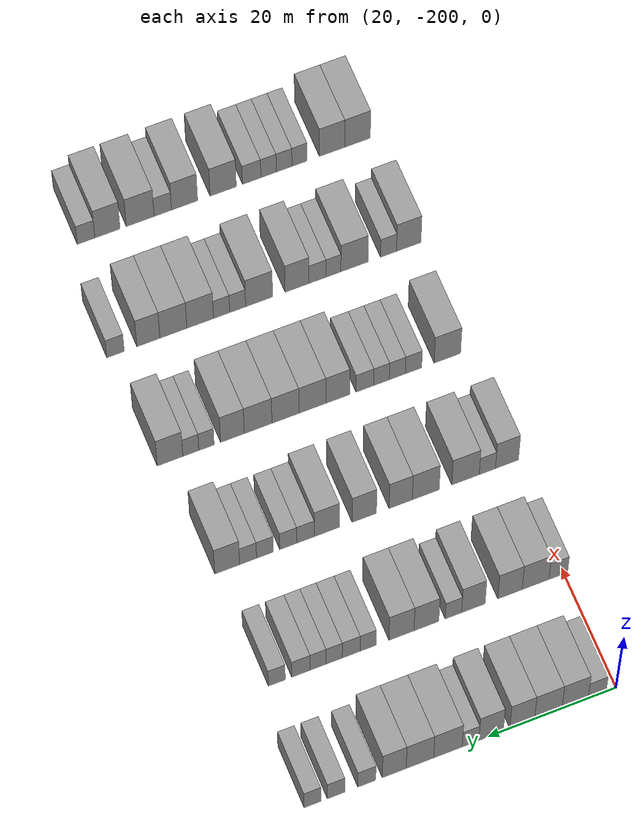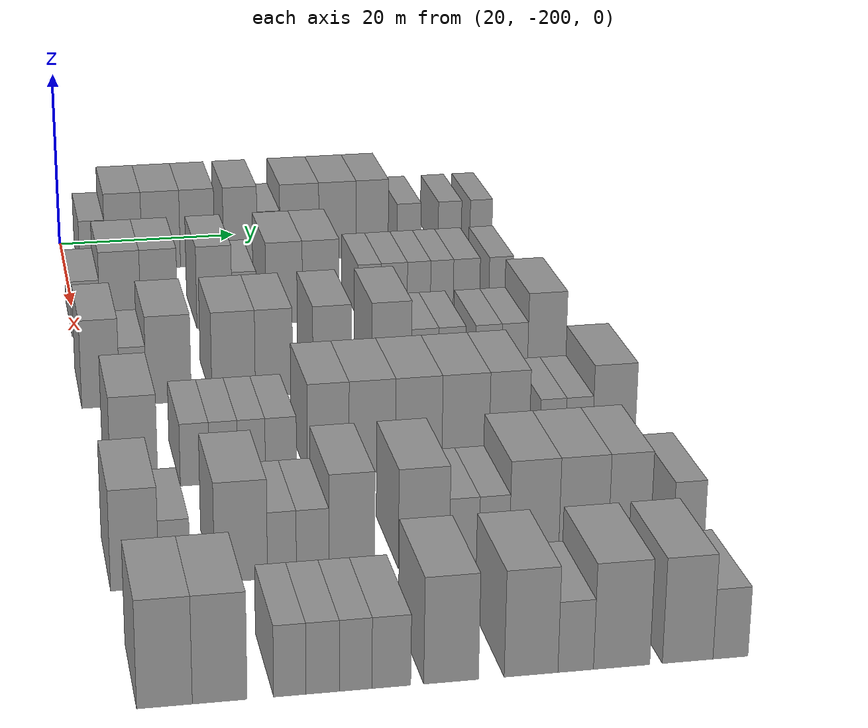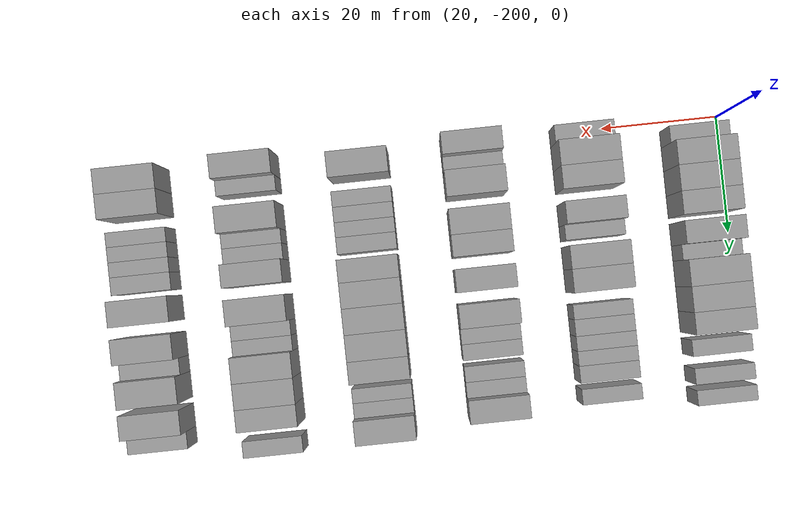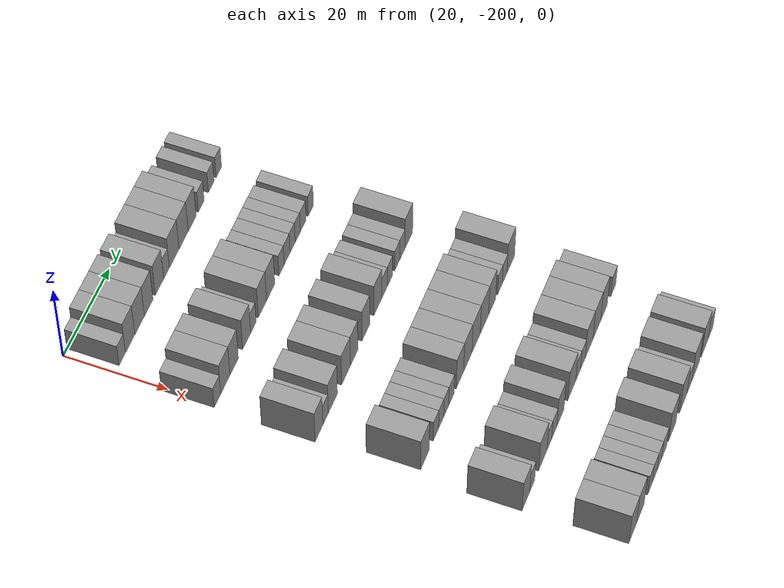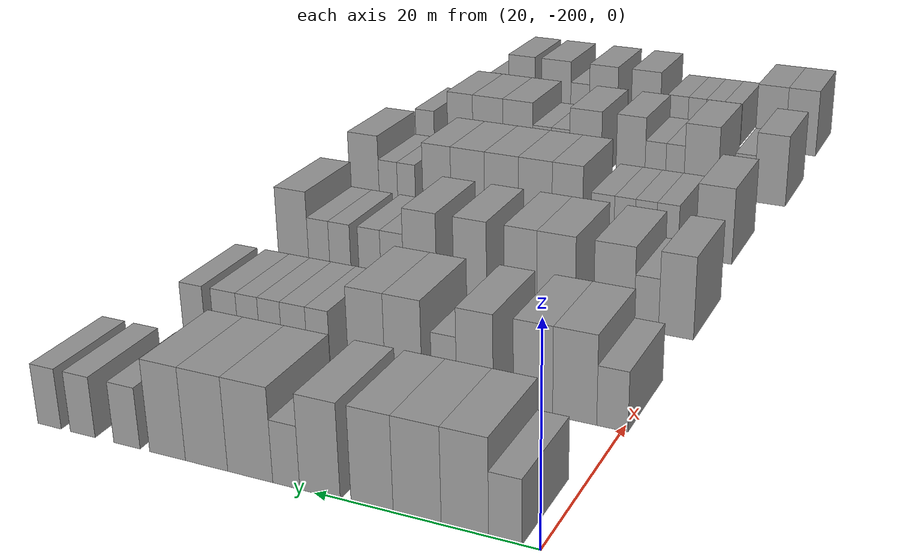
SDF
<sdf version="1.6">
 <world name="default">
  <model name="building_36">
   <static>1</static>
   <pose>25.0000 -196.9977 0 0.000000 0.000000 0.000000</pose>
   <link name="link">
    <pose>0 0 3.00 0 0 0</pose>
    <collision name="collision"><geometry><box><size>10.0000 2.8122 6.0000</size></box></geometry></collision>
    <visual name="visual">
     <cast_shadows>0</cast_shadows>
     <geometry><box><size>10.0000 2.8122 6.0000</size></box></geometry>
     <material>
      <script>
       <uri>model://grey_wall/materials/scripts</uri>
       <uri>model://grey_wall/materials/textures</uri>
       <name>vrc/grey_wall</name>
      </script>
     </material>
    </visual>
   </link>
  </model>
  <model name="building_37">
   <static>1</static>
   <pose>25.0000 -193.5431 0 0.000000 0.000000 0.000000</pose>
   <link name="link">
    <pose>0 0 4.50 0 0 0</pose>
    <collision name="collision"><geometry><box><size>10.0000 4.0971 9.0000</size></box></geometry></collision>
    <visual name="visual">
     <cast_shadows>0</cast_shadows>
     <geometry><box><size>10.0000 4.0971 9.0000</size></box></geometry>
     <material>
      <script>
       <uri>model://grey_wall/materials/scripts</uri>
       <uri>model://grey_wall/materials/textures</uri>
       <name>vrc/grey_wall</name>
      </script>
     </material>
    </visual>
   </link>
  </model>
  <model name="building_38">
   <static>1</static>
   <pose>25.0000 -189.3610 0 0.000000 0.000000 0.000000</pose>
   <link name="link">
    <pose>0 0 4.50 0 0 0</pose>
    <collision name="collision"><geometry><box><size>10.0000 4.2671 9.0000</size></box></geometry></collision>
    <visual name="visual">
     <cast_shadows>0</cast_shadows>
     <geometry><box><size>10.0000 4.2671 9.0000</size></box></geometry>
     <material>
      <script>
       <uri>model://grey_wall/materials/scripts</uri>
       <uri>model://grey_wall/materials/textures</uri>
       <name>vrc/grey_wall</name>
      </script>
     </material>
    </visual>
   </link>
  </model>
  <model name="building_39">
   <static>1</static>
   <pose>25.0000 -185.3052 0 0.000000 0.000000 0.000000</pose>
   <link name="link">
    <pose>0 0 4.50 0 0 0</pose>
    <collision name="collision"><geometry><box><size>10.0000 3.8444 9.0000</size></box></geometry></collision>
    <visual name="visual">
     <cast_shadows>0</cast_shadows>
     <geometry><box><size>10.0000 3.8444 9.0000</size></box></geometry>
     <material>
      <script>
       <uri>model://grey_wall/materials/scripts</uri>
       <uri>model://grey_wall/materials/textures</uri>
       <name>vrc/grey_wall</name>
      </script>
     </material>
    </visual>
   </link>
  </model>
  <model name="building_40">
   <static>1</static>
   <pose>25.0000 -180.4856 0 0.000000 0.000000 0.000000</pose>
   <link name="link">
    <pose>0 0 4.50 0 0 0</pose>
    <collision name="collision"><geometry><box><size>10.0000 3.7950 9.0000</size></box></geometry></collision>
    <visual name="visual">
     <cast_shadows>0</cast_shadows>
     <geometry><box><size>10.0000 3.7950 9.0000</size></box></geometry>
     <material>
      <script>
       <uri>model://grey_wall/materials/scripts</uri>
       <uri>model://grey_wall/materials/textures</uri>
       <name>vrc/grey_wall</name>
      </script>
     </material>
    </visual>
   </link>
  </model>
  <model name="building_41">
   <static>1</static>
   <pose>25.0000 -177.2957 0 0.000000 0.000000 0.000000</pose>
   <link name="link">
    <pose>0 0 3.00 0 0 0</pose>
    <collision name="collision"><geometry><box><size>10.0000 2.5848 6.0000</size></box></geometry></collision>
    <visual name="visual">
     <cast_shadows>0</cast_shadows>
     <geometry><box><size>10.0000 2.5848 6.0000</size></box></geometry>
     <material>
      <script>
       <uri>model://grey_wall/materials/scripts</uri>
       <uri>model://grey_wall/materials/textures</uri>
       <name>vrc/grey_wall</name>
      </script>
     </material>
    </visual>
   </link>
  </model>
  <model name="building_42">
   <static>1</static>
   <pose>25.0000 -173.7970 0 0.000000 0.000000 0.000000</pose>
   <link name="link">
    <pose>0 0 4.50 0 0 0</pose>
    <collision name="collision"><geometry><box><size>10.0000 4.4127 9.0000</size></box></geometry></collision>
    <visual name="visual">
     <cast_shadows>0</cast_shadows>
     <geometry><box><size>10.0000 4.4127 9.0000</size></box></geometry>
     <material>
      <script>
       <uri>model://grey_wall/materials/scripts</uri>
       <uri>model://grey_wall/materials/textures</uri>
       <name>vrc/grey_wall</name>
      </script>
     </material>
    </visual>
   </link>
  </model>
  <model name="building_43">
   <static>1</static>
   <pose>25.0000 -169.4699 0 0.000000 0.000000 0.000000</pose>
   <link name="link">
    <pose>0 0 4.50 0 0 0</pose>
    <collision name="collision"><geometry><box><size>10.0000 4.2415 9.0000</size></box></geometry></collision>
    <visual name="visual">
     <cast_shadows>0</cast_shadows>
     <geometry><box><size>10.0000 4.2415 9.0000</size></box></geometry>
     <material>
      <script>
       <uri>model://grey_wall/materials/scripts</uri>
       <uri>model://grey_wall/materials/textures</uri>
       <name>vrc/grey_wall</name>
      </script>
     </material>
    </visual>
   </link>
  </model>
  <model name="building_44">
   <static>1</static>
   <pose>25.0000 -165.5092 0 0.000000 0.000000 0.000000</pose>
   <link name="link">
    <pose>0 0 4.50 0 0 0</pose>
    <collision name="collision"><geometry><box><size>10.0000 3.6798 9.0000</size></box></geometry></collision>
    <visual name="visual">
     <cast_shadows>0</cast_shadows>
     <geometry><box><size>10.0000 3.6798 9.0000</size></box></geometry>
     <material>
      <script>
       <uri>model://grey_wall/materials/scripts</uri>
       <uri>model://grey_wall/materials/textures</uri>
       <name>vrc/grey_wall</name>
      </script>
     </material>
    </visual>
   </link>
  </model>
  <model name="building_45">
   <static>1</static>
   <pose>25.0000 -161.2880 0 0.000000 0.000000 0.000000</pose>
   <link name="link">
    <pose>0 0 3.00 0 0 0</pose>
    <collision name="collision"><geometry><box><size>10.0000 2.7625 6.0000</size></box></geometry></collision>
    <visual name="visual">
     <cast_shadows>0</cast_shadows>
     <geometry><box><size>10.0000 2.7625 6.0000</size></box></geometry>
     <material>
      <script>
       <uri>model://grey_wall/materials/scripts</uri>
       <uri>model://grey_wall/materials/textures</uri>
       <name>vrc/grey_wall</name>
      </script>
     </material>
    </visual>
   </link>
  </model>
  <model name="building_46">
   <static>1</static>
   <pose>25.0000 -156.5681 0 0.000000 0.000000 0.000000</pose>
   <link name="link">
    <pose>0 0 3.00 0 0 0</pose>
    <collision name="collision"><geometry><box><size>10.0000 2.6774 6.0000</size></box></geometry></collision>
    <visual name="visual">
     <cast_shadows>0</cast_shadows>
     <geometry><box><size>10.0000 2.6774 6.0000</size></box></geometry>
     <material>
      <script>
       <uri>model://grey_wall/materials/scripts</uri>
       <uri>model://grey_wall/materials/textures</uri>
       <name>vrc/grey_wall</name>
      </script>
     </material>
    </visual>
   </link>
  </model>
  <model name="building_47">
   <static>1</static>
   <pose>25.0000 -152.9494 0 0.000000 0.000000 0.000000</pose>
   <link name="link">
    <pose>0 0 3.00 0 0 0</pose>
    <collision name="collision"><geometry><box><size>10.0000 2.5599 6.0000</size></box></geometry></collision>
    <visual name="visual">
     <cast_shadows>0</cast_shadows>
     <geometry><box><size>10.0000 2.5599 6.0000</size></box></geometry>
     <material>
      <script>
       <uri>model://grey_wall/materials/scripts</uri>
       <uri>model://grey_wall/materials/textures</uri>
       <name>vrc/grey_wall</name>
      </script>
     </material>
    </visual>
   </link>
  </model>
  <model name="building_207">
   <static>1</static>
   <pose>44.0000 -199.0599 0 0.000000 0.000000 0.000000</pose>
   <link name="link">
    <pose>0 0 3.00 0 0 0</pose>
    <collision name="collision"><geometry><box><size>10.0000 2.9387 6.0000</size></box></geometry></collision>
    <visual name="visual">
     <cast_shadows>0</cast_shadows>
     <geometry><box><size>10.0000 2.9387 6.0000</size></box></geometry>
     <material>
      <script>
       <uri>model://grey_wall/materials/scripts</uri>
       <uri>model://grey_wall/materials/textures</uri>
       <name>vrc/grey_wall</name>
      </script>
     </material>
    </visual>
   </link>
  </model>
  <model name="building_208">
   <static>1</static>
   <pose>44.0000 -195.4843 0 0.000000 0.000000 0.000000</pose>
   <link name="link">
    <pose>0 0 4.50 0 0 0</pose>
    <collision name="collision"><geometry><box><size>10.0000 4.2125 9.0000</size></box></geometry></collision>
    <visual name="visual">
     <cast_shadows>0</cast_shadows>
     <geometry><box><size>10.0000 4.2125 9.0000</size></box></geometry>
     <material>
      <script>
       <uri>model://grey_wall/materials/scripts</uri>
       <uri>model://grey_wall/materials/textures</uri>
       <name>vrc/grey_wall</name>
      </script>
     </material>
    </visual>
   </link>
  </model>
  <model name="building_209">
   <static>1</static>
   <pose>44.0000 -191.4628 0 0.000000 0.000000 0.000000</pose>
   <link name="link">
    <pose>0 0 4.50 0 0 0</pose>
    <collision name="collision"><geometry><box><size>10.0000 3.8307 9.0000</size></box></geometry></collision>
    <visual name="visual">
     <cast_shadows>0</cast_shadows>
     <geometry><box><size>10.0000 3.8307 9.0000</size></box></geometry>
     <material>
      <script>
       <uri>model://grey_wall/materials/scripts</uri>
       <uri>model://grey_wall/materials/textures</uri>
       <name>vrc/grey_wall</name>
      </script>
     </material>
    </visual>
   </link>
  </model>
  <model name="building_210">
   <static>1</static>
   <pose>44.0000 -185.7054 0 0.000000 0.000000 0.000000</pose>
   <link name="link">
    <pose>0 0 4.50 0 0 0</pose>
    <collision name="collision"><geometry><box><size>10.0000 3.6840 9.0000</size></box></geometry></collision>
    <visual name="visual">
     <cast_shadows>0</cast_shadows>
     <geometry><box><size>10.0000 3.6840 9.0000</size></box></geometry>
     <material>
      <script>
       <uri>model://grey_wall/materials/scripts</uri>
       <uri>model://grey_wall/materials/textures</uri>
       <name>vrc/grey_wall</name>
      </script>
     </material>
    </visual>
   </link>
  </model>
  <model name="building_211">
   <static>1</static>
   <pose>44.0000 -182.5838 0 0.000000 0.000000 0.000000</pose>
   <link name="link">
    <pose>0 0 3.00 0 0 0</pose>
    <collision name="collision"><geometry><box><size>10.0000 2.5592 6.0000</size></box></geometry></collision>
    <visual name="visual">
     <cast_shadows>0</cast_shadows>
     <geometry><box><size>10.0000 2.5592 6.0000</size></box></geometry>
     <material>
      <script>
       <uri>model://grey_wall/materials/scripts</uri>
       <uri>model://grey_wall/materials/textures</uri>
       <name>vrc/grey_wall</name>
      </script>
     </material>
    </visual>
   </link>
  </model>
  <model name="building_212">
   <static>1</static>
   <pose>44.0000 -178.3676 0 0.000000 0.000000 0.000000</pose>
   <link name="link">
    <pose>0 0 4.50 0 0 0</pose>
    <collision name="collision"><geometry><box><size>10.0000 3.8733 9.0000</size></box></geometry></collision>
    <visual name="visual">
     <cast_shadows>0</cast_shadows>
     <geometry><box><size>10.0000 3.8733 9.0000</size></box></geometry>
     <material>
      <script>
       <uri>model://grey_wall/materials/scripts</uri>
       <uri>model://grey_wall/materials/textures</uri>
       <name>vrc/grey_wall</name>
      </script>
     </material>
    </visual>
   </link>
  </model>
  <model name="building_213">
   <static>1</static>
   <pose>44.0000 -174.4769 0 0.000000 0.000000 0.000000</pose>
   <link name="link">
    <pose>0 0 4.50 0 0 0</pose>
    <collision name="collision"><geometry><box><size>10.0000 3.9080 9.0000</size></box></geometry></collision>
    <visual name="visual">
     <cast_shadows>0</cast_shadows>
     <geometry><box><size>10.0000 3.9080 9.0000</size></box></geometry>
     <material>
      <script>
       <uri>model://grey_wall/materials/scripts</uri>
       <uri>model://grey_wall/materials/textures</uri>
       <name>vrc/grey_wall</name>
      </script>
     </material>
    </visual>
   </link>
  </model>
  <model name="building_214">
   <static>1</static>
   <pose>44.0000 -169.2808 0 0.000000 0.000000 0.000000</pose>
   <link name="link">
    <pose>0 0 3.00 0 0 0</pose>
    <collision name="collision"><geometry><box><size>10.0000 2.4842 6.0000</size></box></geometry></collision>
    <visual name="visual">
     <cast_shadows>0</cast_shadows>
     <geometry><box><size>10.0000 2.4842 6.0000</size></box></geometry>
     <material>
      <script>
       <uri>model://grey_wall/materials/scripts</uri>
       <uri>model://grey_wall/materials/textures</uri>
       <name>vrc/grey_wall</name>
      </script>
     </material>
    </visual>
   </link>
  </model>
  <model name="building_215">
   <static>1</static>
   <pose>44.0000 -166.6425 0 0.000000 0.000000 0.000000</pose>
   <link name="link">
    <pose>0 0 3.00 0 0 0</pose>
    <collision name="collision"><geometry><box><size>10.0000 2.7923 6.0000</size></box></geometry></collision>
    <visual name="visual">
     <cast_shadows>0</cast_shadows>
     <geometry><box><size>10.0000 2.7923 6.0000</size></box></geometry>
     <material>
      <script>
       <uri>model://grey_wall/materials/scripts</uri>
       <uri>model://grey_wall/materials/textures</uri>
       <name>vrc/grey_wall</name>
      </script>
     </material>
    </visual>
   </link>
  </model>
  <model name="building_216">
   <static>1</static>
   <pose>44.0000 -163.9953 0 0.000000 0.000000 0.000000</pose>
   <link name="link">
    <pose>0 0 3.00 0 0 0</pose>
    <collision name="collision"><geometry><box><size>10.0000 2.5022 6.0000</size></box></geometry></collision>
    <visual name="visual">
     <cast_shadows>0</cast_shadows>
     <geometry><box><size>10.0000 2.5022 6.0000</size></box></geometry>
     <material>
      <script>
       <uri>model://grey_wall/materials/scripts</uri>
       <uri>model://grey_wall/materials/textures</uri>
       <name>vrc/grey_wall</name>
      </script>
     </material>
    </visual>
   </link>
  </model>
  <model name="building_217">
   <static>1</static>
   <pose>44.0000 -161.5154 0 0.000000 0.000000 0.000000</pose>
   <link name="link">
    <pose>0 0 3.00 0 0 0</pose>
    <collision name="collision"><geometry><box><size>10.0000 2.4577 6.0000</size></box></geometry></collision>
    <visual name="visual">
     <cast_shadows>0</cast_shadows>
     <geometry><box><size>10.0000 2.4577 6.0000</size></box></geometry>
     <material>
      <script>
       <uri>model://grey_wall/materials/scripts</uri>
       <uri>model://grey_wall/materials/textures</uri>
       <name>vrc/grey_wall</name>
      </script>
     </material>
    </visual>
   </link>
  </model>
  <model name="building_218">
   <static>1</static>
   <pose>44.0000 -158.8565 0 0.000000 0.000000 0.000000</pose>
   <link name="link">
    <pose>0 0 3.00 0 0 0</pose>
    <collision name="collision"><geometry><box><size>10.0000 2.8601 6.0000</size></box></geometry></collision>
    <visual name="visual">
     <cast_shadows>0</cast_shadows>
     <geometry><box><size>10.0000 2.8601 6.0000</size></box></geometry>
     <material>
      <script>
       <uri>model://grey_wall/materials/scripts</uri>
       <uri>model://grey_wall/materials/textures</uri>
       <name>vrc/grey_wall</name>
      </script>
     </material>
    </visual>
   </link>
  </model>
  <model name="building_219">
   <static>1</static>
   <pose>44.0000 -155.1144 0 0.000000 0.000000 0.000000</pose>
   <link name="link">
    <pose>0 0 3.00 0 0 0</pose>
    <collision name="collision"><geometry><box><size>10.0000 2.6239 6.0000</size></box></geometry></collision>
    <visual name="visual">
     <cast_shadows>0</cast_shadows>
     <geometry><box><size>10.0000 2.6239 6.0000</size></box></geometry>
     <material>
      <script>
       <uri>model://grey_wall/materials/scripts</uri>
       <uri>model://grey_wall/materials/textures</uri>
       <name>vrc/grey_wall</name>
      </script>
     </material>
    </visual>
   </link>
  </model>
  <model name="building_383">
   <static>1</static>
   <pose>63.0000 -199.0265 0 0.000000 0.000000 0.000000</pose>
   <link name="link">
    <pose>0 0 4.50 0 0 0</pose>
    <collision name="collision"><geometry><box><size>10.0000 3.6526 9.0000</size></box></geometry></collision>
    <visual name="visual">
     <cast_shadows>0</cast_shadows>
     <geometry><box><size>10.0000 3.6526 9.0000</size></box></geometry>
     <material>
      <script>
       <uri>model://grey_wall/materials/scripts</uri>
       <uri>model://grey_wall/materials/textures</uri>
       <name>vrc/grey_wall</name>
      </script>
     </material>
    </visual>
   </link>
  </model>
  <model name="building_384">
   <static>1</static>
   <pose>63.0000 -195.9118 0 0.000000 0.000000 0.000000</pose>
   <link name="link">
    <pose>0 0 3.00 0 0 0</pose>
    <collision name="collision"><geometry><box><size>10.0000 2.5768 6.0000</size></box></geometry></collision>
    <visual name="visual">
     <cast_shadows>0</cast_shadows>
     <geometry><box><size>10.0000 2.5768 6.0000</size></box></geometry>
     <material>
      <script>
       <uri>model://grey_wall/materials/scripts</uri>
       <uri>model://grey_wall/materials/textures</uri>
       <name>vrc/grey_wall</name>
      </script>
     </material>
    </visual>
   </link>
  </model>
  <model name="building_385">
   <static>1</static>
   <pose>63.0000 -192.4491 0 0.000000 0.000000 0.000000</pose>
   <link name="link">
    <pose>0 0 4.50 0 0 0</pose>
    <collision name="collision"><geometry><box><size>10.0000 4.3485 9.0000</size></box></geometry></collision>
    <visual name="visual">
     <cast_shadows>0</cast_shadows>
     <geometry><box><size>10.0000 4.3485 9.0000</size></box></geometry>
     <material>
      <script>
       <uri>model://grey_wall/materials/scripts</uri>
       <uri>model://grey_wall/materials/textures</uri>
       <name>vrc/grey_wall</name>
      </script>
     </material>
    </visual>
   </link>
  </model>
  <model name="building_386">
   <static>1</static>
   <pose>63.0000 -186.1527 0 0.000000 0.000000 0.000000</pose>
   <link name="link">
    <pose>0 0 4.50 0 0 0</pose>
    <collision name="collision"><geometry><box><size>10.0000 4.2444 9.0000</size></box></geometry></collision>
    <visual name="visual">
     <cast_shadows>0</cast_shadows>
     <geometry><box><size>10.0000 4.2444 9.0000</size></box></geometry>
     <material>
      <script>
       <uri>model://grey_wall/materials/scripts</uri>
       <uri>model://grey_wall/materials/textures</uri>
       <name>vrc/grey_wall</name>
      </script>
     </material>
    </visual>
   </link>
  </model>
  <model name="building_387">
   <static>1</static>
   <pose>63.0000 -182.1996 0 0.000000 0.000000 0.000000</pose>
   <link name="link">
    <pose>0 0 4.50 0 0 0</pose>
    <collision name="collision"><geometry><box><size>10.0000 3.6617 9.0000</size></box></geometry></collision>
    <visual name="visual">
     <cast_shadows>0</cast_shadows>
     <geometry><box><size>10.0000 3.6617 9.0000</size></box></geometry>
     <material>
      <script>
       <uri>model://grey_wall/materials/scripts</uri>
       <uri>model://grey_wall/materials/textures</uri>
       <name>vrc/grey_wall</name>
      </script>
     </material>
    </visual>
   </link>
  </model>
  <model name="building_388">
   <static>1</static>
   <pose>63.0000 -176.4600 0 0.000000 0.000000 0.000000</pose>
   <link name="link">
    <pose>0 0 4.50 0 0 0</pose>
    <collision name="collision"><geometry><box><size>10.0000 3.8174 9.0000</size></box></geometry></collision>
    <visual name="visual">
     <cast_shadows>0</cast_shadows>
     <geometry><box><size>10.0000 3.8174 9.0000</size></box></geometry>
     <material>
      <script>
       <uri>model://grey_wall/materials/scripts</uri>
       <uri>model://grey_wall/materials/textures</uri>
       <name>vrc/grey_wall</name>
      </script>
     </material>
    </visual>
   </link>
  </model>
  <model name="building_389">
   <static>1</static>
   <pose>63.0000 -170.5796 0 0.000000 0.000000 0.000000</pose>
   <link name="link">
    <pose>0 0 4.50 0 0 0</pose>
    <collision name="collision"><geometry><box><size>10.0000 3.9434 9.0000</size></box></geometry></collision>
    <visual name="visual">
     <cast_shadows>0</cast_shadows>
     <geometry><box><size>10.0000 3.9434 9.0000</size></box></geometry>
     <material>
      <script>
       <uri>model://grey_wall/materials/scripts</uri>
       <uri>model://grey_wall/materials/textures</uri>
       <name>vrc/grey_wall</name>
      </script>
     </material>
    </visual>
   </link>
  </model>
  <model name="building_390">
   <static>1</static>
   <pose>63.0000 -167.2414 0 0.000000 0.000000 0.000000</pose>
   <link name="link">
    <pose>0 0 3.00 0 0 0</pose>
    <collision name="collision"><geometry><box><size>10.0000 2.7330 6.0000</size></box></geometry></collision>
    <visual name="visual">
     <cast_shadows>0</cast_shadows>
     <geometry><box><size>10.0000 2.7330 6.0000</size></box></geometry>
     <material>
      <script>
       <uri>model://grey_wall/materials/scripts</uri>
       <uri>model://grey_wall/materials/textures</uri>
       <name>vrc/grey_wall</name>
      </script>
     </material>
    </visual>
   </link>
  </model>
  <model name="building_391">
   <static>1</static>
   <pose>63.0000 -164.5336 0 0.000000 0.000000 0.000000</pose>
   <link name="link">
    <pose>0 0 3.00 0 0 0</pose>
    <collision name="collision"><geometry><box><size>10.0000 2.6827 6.0000</size></box></geometry></collision>
    <visual name="visual">
     <cast_shadows>0</cast_shadows>
     <geometry><box><size>10.0000 2.6827 6.0000</size></box></geometry>
     <material>
      <script>
       <uri>model://grey_wall/materials/scripts</uri>
       <uri>model://grey_wall/materials/textures</uri>
       <name>vrc/grey_wall</name>
      </script>
     </material>
    </visual>
   </link>
  </model>
  <model name="building_392">
   <static>1</static>
   <pose>63.0000 -160.8797 0 0.000000 0.000000 0.000000</pose>
   <link name="link">
    <pose>0 0 3.00 0 0 0</pose>
    <collision name="collision"><geometry><box><size>10.0000 2.6249 6.0000</size></box></geometry></collision>
    <visual name="visual">
     <cast_shadows>0</cast_shadows>
     <geometry><box><size>10.0000 2.6249 6.0000</size></box></geometry>
     <material>
      <script>
       <uri>model://grey_wall/materials/scripts</uri>
       <uri>model://grey_wall/materials/textures</uri>
       <name>vrc/grey_wall</name>
      </script>
     </material>
    </visual>
   </link>
  </model>
  <model name="building_393">
   <static>1</static>
   <pose>63.0000 -158.2428 0 0.000000 0.000000 0.000000</pose>
   <link name="link">
    <pose>0 0 3.00 0 0 0</pose>
    <collision name="collision"><geometry><box><size>10.0000 2.6490 6.0000</size></box></geometry></collision>
    <visual name="visual">
     <cast_shadows>0</cast_shadows>
     <geometry><box><size>10.0000 2.6490 6.0000</size></box></geometry>
     <material>
      <script>
       <uri>model://grey_wall/materials/scripts</uri>
       <uri>model://grey_wall/materials/textures</uri>
       <name>vrc/grey_wall</name>
      </script>
     </material>
    </visual>
   </link>
  </model>
  <model name="building_394">
   <static>1</static>
   <pose>63.0000 -154.9851 0 0.000000 0.000000 0.000000</pose>
   <link name="link">
    <pose>0 0 4.50 0 0 0</pose>
    <collision name="collision"><geometry><box><size>10.0000 3.8664 9.0000</size></box></geometry></collision>
    <visual name="visual">
     <cast_shadows>0</cast_shadows>
     <geometry><box><size>10.0000 3.8664 9.0000</size></box></geometry>
     <material>
      <script>
       <uri>model://grey_wall/materials/scripts</uri>
       <uri>model://grey_wall/materials/textures</uri>
       <name>vrc/grey_wall</name>
      </script>
     </material>
    </visual>
   </link>
  </model>
  <model name="building_558">
   <static>1</static>
   <pose>82.0000 -197.5055 0 0.000000 0.000000 0.000000</pose>
   <link name="link">
    <pose>0 0 4.50 0 0 0</pose>
    <collision name="collision"><geometry><box><size>10.0000 4.2127 9.0000</size></box></geometry></collision>
    <visual name="visual">
     <cast_shadows>0</cast_shadows>
     <geometry><box><size>10.0000 4.2127 9.0000</size></box></geometry>
     <material>
      <script>
       <uri>model://grey_wall/materials/scripts</uri>
       <uri>model://grey_wall/materials/textures</uri>
       <name>vrc/grey_wall</name>
      </script>
     </material>
    </visual>
   </link>
  </model>
  <model name="building_559">
   <static>1</static>
   <pose>82.0000 -192.0942 0 0.000000 0.000000 0.000000</pose>
   <link name="link">
    <pose>0 0 3.00 0 0 0</pose>
    <collision name="collision"><geometry><box><size>10.0000 2.6098 6.0000</size></box></geometry></collision>
    <visual name="visual">
     <cast_shadows>0</cast_shadows>
     <geometry><box><size>10.0000 2.6098 6.0000</size></box></geometry>
     <material>
      <script>
       <uri>model://grey_wall/materials/scripts</uri>
       <uri>model://grey_wall/materials/textures</uri>
       <name>vrc/grey_wall</name>
      </script>
     </material>
    </visual>
   </link>
  </model>
  <model name="building_560">
   <static>1</static>
   <pose>82.0000 -189.5093 0 0.000000 0.000000 0.000000</pose>
   <link name="link">
    <pose>0 0 3.00 0 0 0</pose>
    <collision name="collision"><geometry><box><size>10.0000 2.5600 6.0000</size></box></geometry></collision>
    <visual name="visual">
     <cast_shadows>0</cast_shadows>
     <geometry><box><size>10.0000 2.5600 6.0000</size></box></geometry>
     <material>
      <script>
       <uri>model://grey_wall/materials/scripts</uri>
       <uri>model://grey_wall/materials/textures</uri>
       <name>vrc/grey_wall</name>
      </script>
     </material>
    </visual>
   </link>
  </model>
  <model name="building_561">
   <static>1</static>
   <pose>82.0000 -186.9826 0 0.000000 0.000000 0.000000</pose>
   <link name="link">
    <pose>0 0 3.00 0 0 0</pose>
    <collision name="collision"><geometry><box><size>10.0000 2.4934 6.0000</size></box></geometry></collision>
    <visual name="visual">
     <cast_shadows>0</cast_shadows>
     <geometry><box><size>10.0000 2.4934 6.0000</size></box></geometry>
     <material>
      <script>
       <uri>model://grey_wall/materials/scripts</uri>
       <uri>model://grey_wall/materials/textures</uri>
       <name>vrc/grey_wall</name>
      </script>
     </material>
    </visual>
   </link>
  </model>
  <model name="building_562">
   <static>1</static>
   <pose>82.0000 -184.3255 0 0.000000 0.000000 0.000000</pose>
   <link name="link">
    <pose>0 0 3.00 0 0 0</pose>
    <collision name="collision"><geometry><box><size>10.0000 2.8208 6.0000</size></box></geometry></collision>
    <visual name="visual">
     <cast_shadows>0</cast_shadows>
     <geometry><box><size>10.0000 2.8208 6.0000</size></box></geometry>
     <material>
      <script>
       <uri>model://grey_wall/materials/scripts</uri>
       <uri>model://grey_wall/materials/textures</uri>
       <name>vrc/grey_wall</name>
      </script>
     </material>
    </visual>
   </link>
  </model>
  <model name="building_563">
   <static>1</static>
   <pose>82.0000 -180.0190 0 0.000000 0.000000 0.000000</pose>
   <link name="link">
    <pose>0 0 4.50 0 0 0</pose>
    <collision name="collision"><geometry><box><size>10.0000 3.7922 9.0000</size></box></geometry></collision>
    <visual name="visual">
     <cast_shadows>0</cast_shadows>
     <geometry><box><size>10.0000 3.7922 9.0000</size></box></geometry>
     <material>
      <script>
       <uri>model://grey_wall/materials/scripts</uri>
       <uri>model://grey_wall/materials/textures</uri>
       <name>vrc/grey_wall</name>
      </script>
     </material>
    </visual>
   </link>
  </model>
  <model name="building_564">
   <static>1</static>
   <pose>82.0000 -175.9996 0 0.000000 0.000000 0.000000</pose>
   <link name="link">
    <pose>0 0 4.50 0 0 0</pose>
    <collision name="collision"><geometry><box><size>10.0000 4.2466 9.0000</size></box></geometry></collision>
    <visual name="visual">
     <cast_shadows>0</cast_shadows>
     <geometry><box><size>10.0000 4.2466 9.0000</size></box></geometry>
     <material>
      <script>
       <uri>model://grey_wall/materials/scripts</uri>
       <uri>model://grey_wall/materials/textures</uri>
       <name>vrc/grey_wall</name>
      </script>
     </material>
    </visual>
   </link>
  </model>
  <model name="building_565">
   <static>1</static>
   <pose>82.0000 -171.7282 0 0.000000 0.000000 0.000000</pose>
   <link name="link">
    <pose>0 0 4.50 0 0 0</pose>
    <collision name="collision"><geometry><box><size>10.0000 4.2961 9.0000</size></box></geometry></collision>
    <visual name="visual">
     <cast_shadows>0</cast_shadows>
     <geometry><box><size>10.0000 4.2961 9.0000</size></box></geometry>
     <material>
      <script>
       <uri>model://grey_wall/materials/scripts</uri>
       <uri>model://grey_wall/materials/textures</uri>
       <name>vrc/grey_wall</name>
      </script>
     </material>
    </visual>
   </link>
  </model>
  <model name="building_566">
   <static>1</static>
   <pose>82.0000 -167.3878 0 0.000000 0.000000 0.000000</pose>
   <link name="link">
    <pose>0 0 4.50 0 0 0</pose>
    <collision name="collision"><geometry><box><size>10.0000 4.3847 9.0000</size></box></geometry></collision>
    <visual name="visual">
     <cast_shadows>0</cast_shadows>
     <geometry><box><size>10.0000 4.3847 9.0000</size></box></geometry>
     <material>
      <script>
       <uri>model://grey_wall/materials/scripts</uri>
       <uri>model://grey_wall/materials/textures</uri>
       <name>vrc/grey_wall</name>
      </script>
     </material>
    </visual>
   </link>
  </model>
  <model name="building_567">
   <static>1</static>
   <pose>82.0000 -163.3303 0 0.000000 0.000000 0.000000</pose>
   <link name="link">
    <pose>0 0 4.50 0 0 0</pose>
    <collision name="collision"><geometry><box><size>10.0000 3.7304 9.0000</size></box></geometry></collision>
    <visual name="visual">
     <cast_shadows>0</cast_shadows>
     <geometry><box><size>10.0000 3.7304 9.0000</size></box></geometry>
     <material>
      <script>
       <uri>model://grey_wall/materials/scripts</uri>
       <uri>model://grey_wall/materials/textures</uri>
       <name>vrc/grey_wall</name>
      </script>
     </material>
    </visual>
   </link>
  </model>
  <model name="building_568">
   <static>1</static>
   <pose>82.0000 -159.2565 0 0.000000 0.000000 0.000000</pose>
   <link name="link">
    <pose>0 0 3.00 0 0 0</pose>
    <collision name="collision"><geometry><box><size>10.0000 2.4171 6.0000</size></box></geometry></collision>
    <visual name="visual">
     <cast_shadows>0</cast_shadows>
     <geometry><box><size>10.0000 2.4171 6.0000</size></box></geometry>
     <material>
      <script>
       <uri>model://grey_wall/materials/scripts</uri>
       <uri>model://grey_wall/materials/textures</uri>
       <name>vrc/grey_wall</name>
      </script>
     </material>
    </visual>
   </link>
  </model>
  <model name="building_569">
   <static>1</static>
   <pose>82.0000 -156.7894 0 0.000000 0.000000 0.000000</pose>
   <link name="link">
    <pose>0 0 3.00 0 0 0</pose>
    <collision name="collision"><geometry><box><size>10.0000 2.5172 6.0000</size></box></geometry></collision>
    <visual name="visual">
     <cast_shadows>0</cast_shadows>
     <geometry><box><size>10.0000 2.5172 6.0000</size></box></geometry>
     <material>
      <script>
       <uri>model://grey_wall/materials/scripts</uri>
       <uri>model://grey_wall/materials/textures</uri>
       <name>vrc/grey_wall</name>
      </script>
     </material>
    </visual>
   </link>
  </model>
  <model name="building_570">
   <static>1</static>
   <pose>82.0000 -153.5109 0 0.000000 0.000000 0.000000</pose>
   <link name="link">
    <pose>0 0 4.50 0 0 0</pose>
    <collision name="collision"><geometry><box><size>10.0000 4.0397 9.0000</size></box></geometry></collision>
    <visual name="visual">
     <cast_shadows>0</cast_shadows>
     <geometry><box><size>10.0000 4.0397 9.0000</size></box></geometry>
     <material>
      <script>
       <uri>model://grey_wall/materials/scripts</uri>
       <uri>model://grey_wall/materials/textures</uri>
       <name>vrc/grey_wall</name>
      </script>
     </material>
    </visual>
   </link>
  </model>
  <model name="building_742">
   <static>1</static>
   <pose>101.0000 -199.1848 0 0.000000 0.000000 0.000000</pose>
   <link name="link">
    <pose>0 0 4.50 0 0 0</pose>
    <collision name="collision"><geometry><box><size>10.0000 3.9479 9.0000</size></box></geometry></collision>
    <visual name="visual">
     <cast_shadows>0</cast_shadows>
     <geometry><box><size>10.0000 3.9479 9.0000</size></box></geometry>
     <material>
      <script>
       <uri>model://grey_wall/materials/scripts</uri>
       <uri>model://grey_wall/materials/textures</uri>
       <name>vrc/grey_wall</name>
      </script>
     </material>
    </visual>
   </link>
  </model>
  <model name="building_743">
   <static>1</static>
   <pose>101.0000 -195.9245 0 0.000000 0.000000 0.000000</pose>
   <link name="link">
    <pose>0 0 3.00 0 0 0</pose>
    <collision name="collision"><geometry><box><size>10.0000 2.5726 6.0000</size></box></geometry></collision>
    <visual name="visual">
     <cast_shadows>0</cast_shadows>
     <geometry><box><size>10.0000 2.5726 6.0000</size></box></geometry>
     <material>
      <script>
       <uri>model://grey_wall/materials/scripts</uri>
       <uri>model://grey_wall/materials/textures</uri>
       <name>vrc/grey_wall</name>
      </script>
     </material>
    </visual>
   </link>
  </model>
  <model name="building_744">
   <static>1</static>
   <pose>101.0000 -190.4486 0 0.000000 0.000000 0.000000</pose>
   <link name="link">
    <pose>0 0 4.50 0 0 0</pose>
    <collision name="collision"><geometry><box><size>10.0000 4.3793 9.0000</size></box></geometry></collision>
    <visual name="visual">
     <cast_shadows>0</cast_shadows>
     <geometry><box><size>10.0000 4.3793 9.0000</size></box></geometry>
     <material>
      <script>
       <uri>model://grey_wall/materials/scripts</uri>
       <uri>model://grey_wall/materials/textures</uri>
       <name>vrc/grey_wall</name>
      </script>
     </material>
    </visual>
   </link>
  </model>
  <model name="building_745">
   <static>1</static>
   <pose>101.0000 -187.0556 0 0.000000 0.000000 0.000000</pose>
   <link name="link">
    <pose>0 0 3.00 0 0 0</pose>
    <collision name="collision"><geometry><box><size>10.0000 2.4067 6.0000</size></box></geometry></collision>
    <visual name="visual">
     <cast_shadows>0</cast_shadows>
     <geometry><box><size>10.0000 2.4067 6.0000</size></box></geometry>
     <material>
      <script>
       <uri>model://grey_wall/materials/scripts</uri>
       <uri>model://grey_wall/materials/textures</uri>
       <name>vrc/grey_wall</name>
      </script>
     </material>
    </visual>
   </link>
  </model>
  <model name="building_746">
   <static>1</static>
   <pose>101.0000 -184.4941 0 0.000000 0.000000 0.000000</pose>
   <link name="link">
    <pose>0 0 3.00 0 0 0</pose>
    <collision name="collision"><geometry><box><size>10.0000 2.7163 6.0000</size></box></geometry></collision>
    <visual name="visual">
     <cast_shadows>0</cast_shadows>
     <geometry><box><size>10.0000 2.7163 6.0000</size></box></geometry>
     <material>
      <script>
       <uri>model://grey_wall/materials/scripts</uri>
       <uri>model://grey_wall/materials/textures</uri>
       <name>vrc/grey_wall</name>
      </script>
     </material>
    </visual>
   </link>
  </model>
  <model name="building_747">
   <static>1</static>
   <pose>101.0000 -181.2190 0 0.000000 0.000000 0.000000</pose>
   <link name="link">
    <pose>0 0 4.50 0 0 0</pose>
    <collision name="collision"><geometry><box><size>10.0000 3.8339 9.0000</size></box></geometry></collision>
    <visual name="visual">
     <cast_shadows>0</cast_shadows>
     <geometry><box><size>10.0000 3.8339 9.0000</size></box></geometry>
     <material>
      <script>
       <uri>model://grey_wall/materials/scripts</uri>
       <uri>model://grey_wall/materials/textures</uri>
       <name>vrc/grey_wall</name>
      </script>
     </material>
    </visual>
   </link>
  </model>
  <model name="building_748">
   <static>1</static>
   <pose>101.0000 -175.1398 0 0.000000 0.000000 0.000000</pose>
   <link name="link">
    <pose>0 0 4.50 0 0 0</pose>
    <collision name="collision"><geometry><box><size>10.0000 4.3245 9.0000</size></box></geometry></collision>
    <visual name="visual">
     <cast_shadows>0</cast_shadows>
     <geometry><box><size>10.0000 4.3245 9.0000</size></box></geometry>
     <material>
      <script>
       <uri>model://grey_wall/materials/scripts</uri>
       <uri>model://grey_wall/materials/textures</uri>
       <name>vrc/grey_wall</name>
      </script>
     </material>
    </visual>
   </link>
  </model>
  <model name="building_749">
   <static>1</static>
   <pose>101.0000 -171.7110 0 0.000000 0.000000 0.000000</pose>
   <link name="link">
    <pose>0 0 3.00 0 0 0</pose>
    <collision name="collision"><geometry><box><size>10.0000 2.5331 6.0000</size></box></geometry></collision>
    <visual name="visual">
     <cast_shadows>0</cast_shadows>
     <geometry><box><size>10.0000 2.5331 6.0000</size></box></geometry>
     <material>
      <script>
       <uri>model://grey_wall/materials/scripts</uri>
       <uri>model://grey_wall/materials/textures</uri>
       <name>vrc/grey_wall</name>
      </script>
     </material>
    </visual>
   </link>
  </model>
  <model name="building_750">
   <static>1</static>
   <pose>101.0000 -169.1522 0 0.000000 0.000000 0.000000</pose>
   <link name="link">
    <pose>0 0 3.00 0 0 0</pose>
    <collision name="collision"><geometry><box><size>10.0000 2.5846 6.0000</size></box></geometry></collision>
    <visual name="visual">
     <cast_shadows>0</cast_shadows>
     <geometry><box><size>10.0000 2.5846 6.0000</size></box></geometry>
     <material>
      <script>
       <uri>model://grey_wall/materials/scripts</uri>
       <uri>model://grey_wall/materials/textures</uri>
       <name>vrc/grey_wall</name>
      </script>
     </material>
    </visual>
   </link>
  </model>
  <model name="building_751">
   <static>1</static>
   <pose>101.0000 -165.7373 0 0.000000 0.000000 0.000000</pose>
   <link name="link">
    <pose>0 0 4.50 0 0 0</pose>
    <collision name="collision"><geometry><box><size>10.0000 4.2453 9.0000</size></box></geometry></collision>
    <visual name="visual">
     <cast_shadows>0</cast_shadows>
     <geometry><box><size>10.0000 4.2453 9.0000</size></box></geometry>
     <material>
      <script>
       <uri>model://grey_wall/materials/scripts</uri>
       <uri>model://grey_wall/materials/textures</uri>
       <name>vrc/grey_wall</name>
      </script>
     </material>
    </visual>
   </link>
  </model>
  <model name="building_752">
   <static>1</static>
   <pose>101.0000 -161.4705 0 0.000000 0.000000 0.000000</pose>
   <link name="link">
    <pose>0 0 4.50 0 0 0</pose>
    <collision name="collision"><geometry><box><size>10.0000 4.2882 9.0000</size></box></geometry></collision>
    <visual name="visual">
     <cast_shadows>0</cast_shadows>
     <geometry><box><size>10.0000 4.2882 9.0000</size></box></geometry>
     <material>
      <script>
       <uri>model://grey_wall/materials/scripts</uri>
       <uri>model://grey_wall/materials/textures</uri>
       <name>vrc/grey_wall</name>
      </script>
     </material>
    </visual>
   </link>
  </model>
  <model name="building_753">
   <static>1</static>
   <pose>101.0000 -157.4978 0 0.000000 0.000000 0.000000</pose>
   <link name="link">
    <pose>0 0 4.50 0 0 0</pose>
    <collision name="collision"><geometry><box><size>10.0000 3.6571 9.0000</size></box></geometry></collision>
    <visual name="visual">
     <cast_shadows>0</cast_shadows>
     <geometry><box><size>10.0000 3.6571 9.0000</size></box></geometry>
     <material>
      <script>
       <uri>model://grey_wall/materials/scripts</uri>
       <uri>model://grey_wall/materials/textures</uri>
       <name>vrc/grey_wall</name>
      </script>
     </material>
    </visual>
   </link>
  </model>
  <model name="building_754">
   <static>1</static>
   <pose>101.0000 -152.2875 0 0.000000 0.000000 0.000000</pose>
   <link name="link">
    <pose>0 0 3.00 0 0 0</pose>
    <collision name="collision"><geometry><box><size>10.0000 2.7636 6.0000</size></box></geometry></collision>
    <visual name="visual">
     <cast_shadows>0</cast_shadows>
     <geometry><box><size>10.0000 2.7636 6.0000</size></box></geometry>
     <material>
      <script>
       <uri>model://grey_wall/materials/scripts</uri>
       <uri>model://grey_wall/materials/textures</uri>
       <name>vrc/grey_wall</name>
      </script>
     </material>
    </visual>
   </link>
  </model>
  <model name="building_921">
   <static>1</static>
   <pose>120.0000 -198.6935 0 0.000000 0.000000 0.000000</pose>
   <link name="link">
    <pose>0 0 4.50 0 0 0</pose>
    <collision name="collision"><geometry><box><size>10.0000 4.1589 9.0000</size></box></geometry></collision>
    <visual name="visual">
     <cast_shadows>0</cast_shadows>
     <geometry><box><size>10.0000 4.1589 9.0000</size></box></geometry>
     <material>
      <script>
       <uri>model://grey_wall/materials/scripts</uri>
       <uri>model://grey_wall/materials/textures</uri>
       <name>vrc/grey_wall</name>
      </script>
     </material>
    </visual>
   </link>
  </model>
  <model name="building_922">
   <static>1</static>
   <pose>120.0000 -194.5588 0 0.000000 0.000000 0.000000</pose>
   <link name="link">
    <pose>0 0 4.50 0 0 0</pose>
    <collision name="collision"><geometry><box><size>10.0000 4.1106 9.0000</size></box></geometry></collision>
    <visual name="visual">
     <cast_shadows>0</cast_shadows>
     <geometry><box><size>10.0000 4.1106 9.0000</size></box></geometry>
     <material>
      <script>
       <uri>model://grey_wall/materials/scripts</uri>
       <uri>model://grey_wall/materials/textures</uri>
       <name>vrc/grey_wall</name>
      </script>
     </material>
    </visual>
   </link>
  </model>
  <model name="building_923">
   <static>1</static>
   <pose>120.0000 -189.2822 0 0.000000 0.000000 0.000000</pose>
   <link name="link">
    <pose>0 0 3.00 0 0 0</pose>
    <collision name="collision"><geometry><box><size>10.0000 2.4426 6.0000</size></box></geometry></collision>
    <visual name="visual">
     <cast_shadows>0</cast_shadows>
     <geometry><box><size>10.0000 2.4426 6.0000</size></box></geometry>
     <material>
      <script>
       <uri>model://grey_wall/materials/scripts</uri>
       <uri>model://grey_wall/materials/textures</uri>
       <name>vrc/grey_wall</name>
      </script>
     </material>
    </visual>
   </link>
  </model>
  <model name="building_924">
   <static>1</static>
   <pose>120.0000 -186.7838 0 0.000000 0.000000 0.000000</pose>
   <link name="link">
    <pose>0 0 3.00 0 0 0</pose>
    <collision name="collision"><geometry><box><size>10.0000 2.5542 6.0000</size></box></geometry></collision>
    <visual name="visual">
     <cast_shadows>0</cast_shadows>
     <geometry><box><size>10.0000 2.5542 6.0000</size></box></geometry>
     <material>
      <script>
       <uri>model://grey_wall/materials/scripts</uri>
       <uri>model://grey_wall/materials/textures</uri>
       <name>vrc/grey_wall</name>
      </script>
     </material>
    </visual>
   </link>
  </model>
  <model name="building_925">
   <static>1</static>
   <pose>120.0000 -184.2609 0 0.000000 0.000000 0.000000</pose>
   <link name="link">
    <pose>0 0 3.00 0 0 0</pose>
    <collision name="collision"><geometry><box><size>10.0000 2.4916 6.0000</size></box></geometry></collision>
    <visual name="visual">
     <cast_shadows>0</cast_shadows>
     <geometry><box><size>10.0000 2.4916 6.0000</size></box></geometry>
     <material>
      <script>
       <uri>model://grey_wall/materials/scripts</uri>
       <uri>model://grey_wall/materials/textures</uri>
       <name>vrc/grey_wall</name>
      </script>
     </material>
    </visual>
   </link>
  </model>
  <model name="building_926">
   <static>1</static>
   <pose>120.0000 -181.5287 0 0.000000 0.000000 0.000000</pose>
   <link name="link">
    <pose>0 0 3.00 0 0 0</pose>
    <collision name="collision"><geometry><box><size>10.0000 2.9729 6.0000</size></box></geometry></collision>
    <visual name="visual">
     <cast_shadows>0</cast_shadows>
     <geometry><box><size>10.0000 2.9729 6.0000</size></box></geometry>
     <material>
      <script>
       <uri>model://grey_wall/materials/scripts</uri>
       <uri>model://grey_wall/materials/textures</uri>
       <name>vrc/grey_wall</name>
      </script>
     </material>
    </visual>
   </link>
  </model>
  <model name="building_927">
   <static>1</static>
   <pose>120.0000 -176.9233 0 0.000000 0.000000 0.000000</pose>
   <link name="link">
    <pose>0 0 4.50 0 0 0</pose>
    <collision name="collision"><geometry><box><size>10.0000 4.2379 9.0000</size></box></geometry></collision>
    <visual name="visual">
     <cast_shadows>0</cast_shadows>
     <geometry><box><size>10.0000 4.2379 9.0000</size></box></geometry>
     <material>
      <script>
       <uri>model://grey_wall/materials/scripts</uri>
       <uri>model://grey_wall/materials/textures</uri>
       <name>vrc/grey_wall</name>
      </script>
     </material>
    </visual>
   </link>
  </model>
  <model name="building_928">
   <static>1</static>
   <pose>120.0000 -170.7018 0 0.000000 0.000000 0.000000</pose>
   <link name="link">
    <pose>0 0 4.50 0 0 0</pose>
    <collision name="collision"><geometry><box><size>10.0000 4.2049 9.0000</size></box></geometry></collision>
    <visual name="visual">
     <cast_shadows>0</cast_shadows>
     <geometry><box><size>10.0000 4.2049 9.0000</size></box></geometry>
     <material>
      <script>
       <uri>model://grey_wall/materials/scripts</uri>
       <uri>model://grey_wall/materials/textures</uri>
       <name>vrc/grey_wall</name>
      </script>
     </material>
    </visual>
   </link>
  </model>
  <model name="building_929">
   <static>1</static>
   <pose>120.0000 -167.2003 0 0.000000 0.000000 0.000000</pose>
   <link name="link">
    <pose>0 0 3.00 0 0 0</pose>
    <collision name="collision"><geometry><box><size>10.0000 2.7983 6.0000</size></box></geometry></collision>
    <visual name="visual">
     <cast_shadows>0</cast_shadows>
     <geometry><box><size>10.0000 2.7983 6.0000</size></box></geometry>
     <material>
      <script>
       <uri>model://grey_wall/materials/scripts</uri>
       <uri>model://grey_wall/materials/textures</uri>
       <name>vrc/grey_wall</name>
      </script>
     </material>
    </visual>
   </link>
  </model>
  <model name="building_930">
   <static>1</static>
   <pose>120.0000 -163.5717 0 0.000000 0.000000 0.000000</pose>
   <link name="link">
    <pose>0 0 4.50 0 0 0</pose>
    <collision name="collision"><geometry><box><size>10.0000 4.4588 9.0000</size></box></geometry></collision>
    <visual name="visual">
     <cast_shadows>0</cast_shadows>
     <geometry><box><size>10.0000 4.4588 9.0000</size></box></geometry>
     <material>
      <script>
       <uri>model://grey_wall/materials/scripts</uri>
       <uri>model://grey_wall/materials/textures</uri>
       <name>vrc/grey_wall</name>
      </script>
     </material>
    </visual>
   </link>
  </model>
  <model name="building_931">
   <static>1</static>
   <pose>120.0000 -158.3199 0 0.000000 0.000000 0.000000</pose>
   <link name="link">
    <pose>0 0 4.50 0 0 0</pose>
    <collision name="collision"><geometry><box><size>10.0000 4.0448 9.0000</size></box></geometry></collision>
    <visual name="visual">
     <cast_shadows>0</cast_shadows>
     <geometry><box><size>10.0000 4.0448 9.0000</size></box></geometry>
     <material>
      <script>
       <uri>model://grey_wall/materials/scripts</uri>
       <uri>model://grey_wall/materials/textures</uri>
       <name>vrc/grey_wall</name>
      </script>
     </material>
    </visual>
   </link>
  </model>
  <model name="building_932">
   <static>1</static>
   <pose>120.0000 -154.8917 0 0.000000 0.000000 0.000000</pose>
   <link name="link">
    <pose>0 0 3.00 0 0 0</pose>
    <collision name="collision"><geometry><box><size>10.0000 2.8116 6.0000</size></box></geometry></collision>
    <visual name="visual">
     <cast_shadows>0</cast_shadows>
     <geometry><box><size>10.0000 2.8116 6.0000</size></box></geometry>
     <material>
      <script>
       <uri>model://grey_wall/materials/scripts</uri>
       <uri>model://grey_wall/materials/textures</uri>
       <name>vrc/grey_wall</name>
      </script>
     </material>
    </visual>
   </link>
  </model>
 </world>
</sdf>
